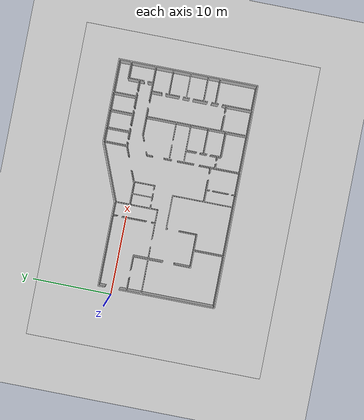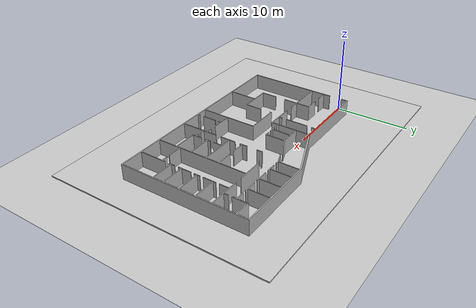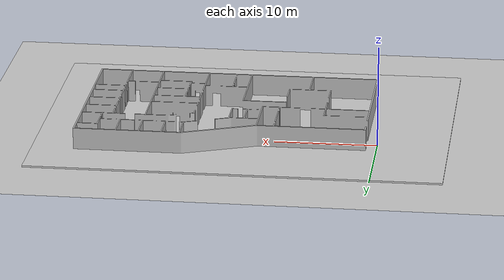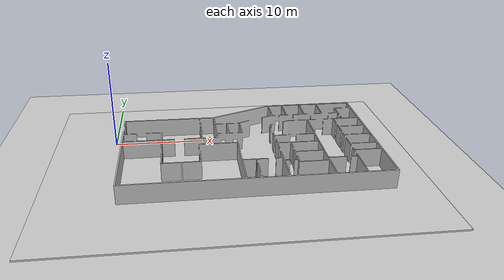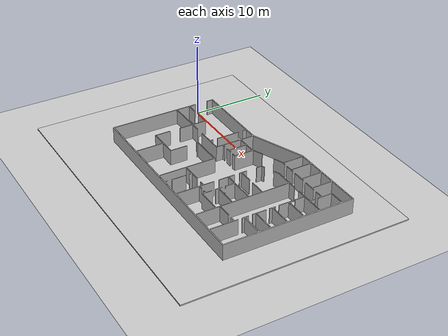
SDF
<sdf version="1.6">
 <world name="default">
  <light name="sun" type="directional">
   <pose>0 0 10 0 -0 0</pose>
   <diffuse>0.8 0.8 0.8 1</diffuse>
   <specular>0.1 0.1 0.1 1</specular>
   <attenuation>
    <range>1000</range>
    <constant>0.9</constant>
    <linear>0.01</linear>
    <quadratic>0.001</quadratic>
   </attenuation>
   <direction>-0.5 0.5 -1</direction>
  </light>
  <model name="ground_plane">
   <static>1</static>
   <link name="link">
    <collision name="collision">
     <geometry><plane><normal>0 0 1</normal><size>100 100</size></plane></geometry>
     <surface><friction><ode><mu>100</mu><mu2>50</mu2></ode></friction></surface>
    </collision>
    <visual name="visual">
     <cast_shadows>0</cast_shadows>
     <geometry><plane><normal>0 0 1</normal><size>100 100</size></plane></geometry>
     <material>
      <script><uri>file://media/materials/scripts/gazebo.material</uri><name>Gazebo/Grey</name></script>
     </material>
    </visual>
   </link>
  </model>
  <gravity>0 0 -9.8</gravity>
  <magnetic_field>6e-06 2.3e-05 -4.2e-05</magnetic_field>
  <atmosphere type="adiabatic"/>
  <physics name="default_physics" default="0" type="ode">
   <max_step_size>0.001</max_step_size>
   <real_time_factor>1</real_time_factor>
   <real_time_update_rate>1000</real_time_update_rate>
  </physics>
  <scene><ambient>0.6 0.6 0.6 1</ambient><background>0.8 0.79 0.77 1</background><shadows>1</shadows></scene>
  <spherical_coordinates>
   <surface_model>EARTH_WGS84</surface_model>
   <latitude_deg>0</latitude_deg>
   <longitude_deg>0</longitude_deg>
   <elevation>0</elevation>
   <heading_deg>0</heading_deg>
  </spherical_coordinates>
  <model name="woodenfloor">
   <link name="link">
    <collision name="collision">
     <geometry>
      <mesh><uri>model://ed_pmov/models/woodenfloor/woodenfloor.dae</uri><scale>1 1 1</scale></mesh>
     </geometry>
     <max_contacts>1</max_contacts>
    </collision>
    <visual name="visual">
     <geometry>
      <mesh><uri>model://ed_pmov/models/woodenfloor/woodenfloor.dae</uri><scale>1 1 1</scale></mesh>
     </geometry>
     <material>
      <script>
       <uri>model://ed_pmov/models/woodenfloor/materials/scripts</uri>
       <uri>model://ed_pmov/models/woodenfloor/materials/textures</uri>
       <name>woodenfloor/Diffuse</name>
      </script>
     </material>
    </visual>
    <inertial>
     <inertia><ixx>1</ixx><ixy>0</ixy><ixz>0</ixz><iyy>1</iyy><iyz>0</iyz><izz>1</izz></inertia>
     <mass>0.1</mass>
    </inertial>
    <gravity>0</gravity>
   </link>
   <pose>13.1 -5.45 0.01 0 -0 0</pose>
  </model>
  <model name="my_building">
   <pose>0 0 0.02 0 -0 0</pose>
   <static>1</static>
   <link name="building">
    <visual name="visual">
     <geometry><mesh><uri>model://ed_pmov/models/building/building.dae</uri><scale>1 1 1</scale></mesh></geometry>
     <material>
      <script>
       <uri>model://ed_pmov/models/building/materials/scripts</uri>
       <uri>model://ed_pmov/models/building/materials/textures</uri>
       <name>wall/Diffuse</name>
      </script>
     </material>
    </visual>
   </link>
  </model>
 </world>
</sdf>
